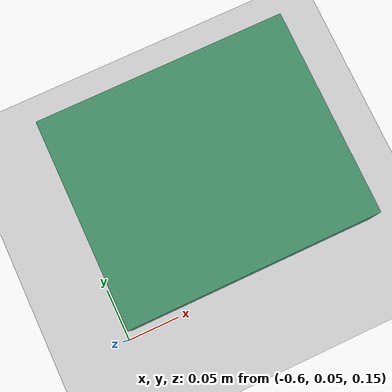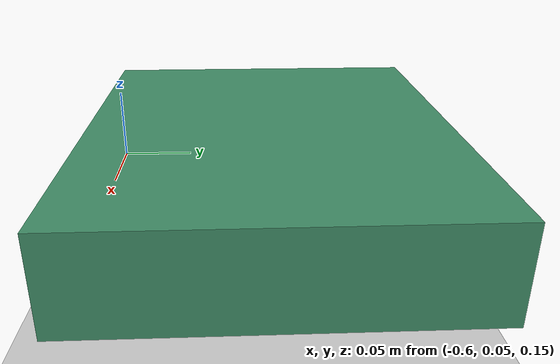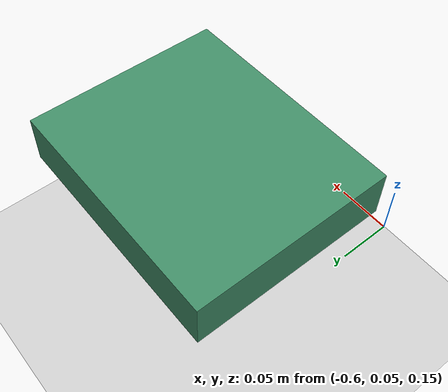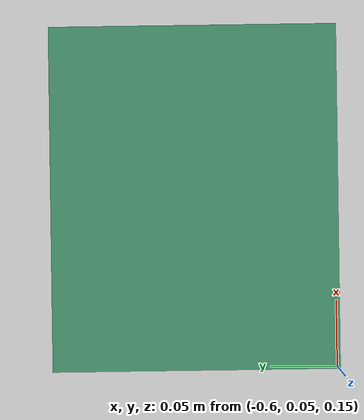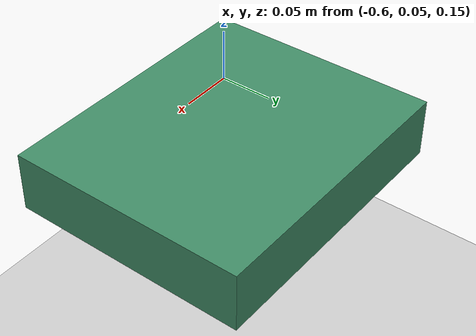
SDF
<?xml version="1.0"?>
<sdf version="1.6">
  <world name="massage_task_test">
    <physics name="1ms" type="ignored">
      <max_step_size>0.001</max_step_size>
      <real_time_factor>1.0</real_time_factor>
    </physics>
    <plugin filename="ignition-gazebo-physics-system" name="gz::sim::systems::Physics"/>
    <plugin filename="ignition-gazebo-user-commands-system" name="gz::sim::systems::UserCommands"/>
    <plugin filename="ignition-gazebo-scene-broadcaster-system" name="gz::sim::systems::SceneBroadcaster"/>
    <plugin filename="ignition-gazebo-contact-system" name="gz::sim::systems::Contact"/>
    <plugin filename="ignition-gazebo-forcetorque-system" name="ignition::gazebo::systems::ForceTorque"/>
    <plugin filename="ignition-gazebo-apply-link-wrench-system" name="gz::sim::systems::ApplyLinkWrench"/>

    <light type="directional" name="sun">
      <cast_shadows>true</cast_shadows>
      <pose>0 0 10 0 0 0</pose>
      <diffuse>0.8 0.8 0.8 1</diffuse>
      <specular>0.2 0.2 0.2 1</specular>
      <direction>-0.5 0.1 -0.9</direction>
    </light>

    <model name="ground_plane">
      <static>true</static>
      <link name="ground_link">
        <collision name="ground_collision">
          <geometry><plane><normal>0 0 1</normal><size>100 100</size></plane></geometry>
        </collision>
        <visual name="ground_visual">
          <geometry><plane><normal>0 0 1</normal><size>100 100</size></plane></geometry>
        </visual>
      </link>
    </model>

    <!-- 全流程自动验收使用可见参考面，但保留 31 mm 几何间隙。
         接触信号由 ApplyLinkWrench 可重复注入，不把刚体碰撞冲击混入验收。 -->
    <model name="massage_bed_pad">
      <static>true</static>
      <pose>-0.471238630 0.156275069 0.195 0 0 0</pose>
      <link name="pad_link">
        <collision name="pad_collision">
          <geometry><box><size>0.24 0.20 0.05</size></box></geometry>
        </collision>
        <visual name="pad_visual">
          <geometry><box><size>0.24 0.20 0.05</size></box></geometry>
          <material><ambient>0.25 0.55 0.40 1</ambient><diffuse>0.25 0.55 0.40 1</diffuse></material>
        </visual>
      </link>
    </model>
  </world>
</sdf>
